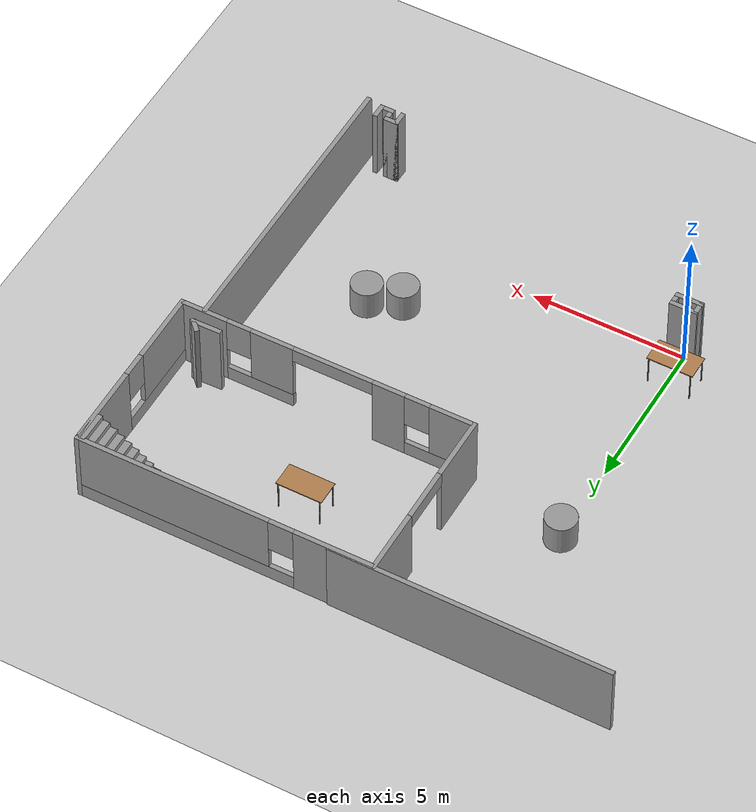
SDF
<sdf version="1.6">
 <world name="default">
  <model name="ground_plane">
   <static>1</static>
   <link name="link">
    <collision name="collision">
     <geometry><plane><normal>0 0 1</normal><size>100 100</size></plane></geometry>
     <surface>
      <contact><collide_bitmask>65535</collide_bitmask></contact>
      <friction><ode><mu>100</mu><mu2>50</mu2></ode></friction>
     </surface>
    </collision>
    <visual name="visual">
     <cast_shadows>0</cast_shadows>
     <geometry><plane><normal>0 0 1</normal><size>100 100</size></plane></geometry>
     <material>
      <script><uri>file://media/materials/scripts/gazebo.material</uri><name>Gazebo/Grey</name></script>
     </material>
    </visual>
   </link>
  </model>
  <model name="so1_1">
   <pose>11.7341 7.701 0 0 -0 0</pose>
   <link name="Wall_0">
    <collision name="Wall_0_Collision">
     <geometry><box><size>1 0.15 2.5</size></box></geometry>
     <pose>0 0 1.25 0 -0 0</pose>
    </collision>
    <visual name="Wall_0_Visual">
     <pose>0 0 1.25 0 -0 0</pose>
     <geometry><box><size>1 0.15 2.5</size></box></geometry>
     <material>
      <script><uri>file://media/materials/scripts/gazebo.material</uri><name>Gazebo/Grey</name></script>
      <ambient>1 1 1 1</ambient>
     </material>
     <meta><layer>0</layer></meta>
    </visual>
    <pose>-0.01472 -0.123744 0 0 -0 0.023525</pose>
   </link>
   <link name="Wall_1">
    <collision name="Wall_1_Collision">
     <geometry><box><size>0.5 0.15 2.5</size></box></geometry>
     <pose>0 0 1.25 0 -0 0</pose>
    </collision>
    <visual name="Wall_1_Visual">
     <pose>0 0 1.25 0 -0 0</pose>
     <geometry><box><size>0.5 0.15 2.5</size></box></geometry>
     <material>
      <script><uri>file://media/materials/scripts/gazebo.material</uri><name>Gazebo/Grey</name></script>
      <ambient>1 1 1 1</ambient>
     </material>
     <meta><layer>0</layer></meta>
    </visual>
    <pose>0.286536 -0 0 0 -0 2.35619</pose>
   </link>
   <static>1</static>
  </model>
  <model name="so2">
   <pose>11.1924 -2.29799 0 0 -0 0</pose>
   <link name="Wall_10">
    <collision name="Wall_10_Collision">
     <geometry><box><size>0.5 0.15 2.5</size></box></geometry>
     <pose>0 0 1.25 0 -0 0</pose>
    </collision>
    <visual name="Wall_10_Visual">
     <pose>0 0 1.25 0 -0 0</pose>
     <geometry><box><size>0.5 0.15 2.5</size></box></geometry>
     <material>
      <script><uri>file://media/materials/scripts/gazebo.material</uri><name>Gazebo/Grey</name></script>
      <ambient>1 1 1 1</ambient>
     </material>
     <meta><layer>0</layer></meta>
    </visual>
    <pose>-0.35 0 0 0 -0 -1.5708</pose>
   </link>
   <link name="Wall_3">
    <collision name="Wall_3_Collision">
     <geometry><box><size>0.5 0.15 2.5</size></box></geometry>
     <pose>0 0 1.25 0 -0 0</pose>
    </collision>
    <visual name="Wall_3_Visual">
     <pose>0 0 1.25 0 -0 0</pose>
     <geometry><box><size>0.5 0.15 2.5</size></box></geometry>
     <material>
      <script><uri>file://media/materials/scripts/gazebo.material</uri><name>Gazebo/Grey</name></script>
      <ambient>1 1 1 1</ambient>
     </material>
     <meta><layer>0</layer></meta>
    </visual>
    <pose>0.35 0 0 0 -0 -1.5708</pose>
   </link>
   <link name="Wall_4">
    <collision name="Wall_4_Collision">
     <geometry><box><size>0.5 0.15 2.5</size></box></geometry>
     <pose>0 0 1.25 0 -0 0</pose>
    </collision>
    <visual name="Wall_4_Visual">
     <pose>0 0 1.25 0 -0 0</pose>
     <geometry><box><size>0.5 0.15 2.5</size></box></geometry>
     <material>
      <script><uri>file://media/materials/scripts/gazebo.material</uri><name>Gazebo/Grey</name></script>
      <ambient>1 1 1 1</ambient>
     </material>
     <meta><layer>0</layer></meta>
    </visual>
    <pose>0.175 -0.175 0 0 -0 3.14159</pose>
   </link>
   <link name="Wall_8">
    <collision name="Wall_8_Collision">
     <geometry><box><size>0.5 0.15 2.5</size></box></geometry>
     <pose>0 0 1.25 0 -0 0</pose>
    </collision>
    <visual name="Wall_8_Visual">
     <pose>0 0 1.25 0 -0 0</pose>
     <geometry><box><size>0.5 0.15 2.5</size></box></geometry>
     <material>
      <script><uri>file://media/materials/scripts/gazebo.material</uri><name>Gazebo/Grey</name></script>
      <ambient>1 1 1 1</ambient>
     </material>
     <meta><layer>0</layer></meta>
    </visual>
    <pose>-0 0 0 0 -0 1.5708</pose>
   </link>
   <link name="Wall_9">
    <collision name="Wall_9_Collision">
     <geometry><box><size>0.5 0.15 2.5</size></box></geometry>
     <pose>0 0 1.25 0 -0 0</pose>
    </collision>
    <visual name="Wall_9_Visual">
     <pose>0 0 1.25 0 -0 0</pose>
     <geometry><box><size>0.5 0.15 2.5</size></box></geometry>
     <material>
      <script><uri>file://media/materials/scripts/gazebo.material</uri><name>Gazebo/Grey</name></script>
      <ambient>1 1 1 1</ambient>
     </material>
     <meta><layer>0</layer></meta>
    </visual>
    <pose>-0.175 0.175 0 0 -0 3.14159</pose>
   </link>
   <static>1</static>
  </model>
  <model name="house1_0">
   <pose>7.9813 9.9993 0 0 -0 1.575</pose>
   <link name="Stairs_0">
    <visual name="Stairs_0_Visual_0">
     <pose>2.40484 -1.42237 0.083333 0 -0 0</pose>
     <geometry><box><size>1 0.233333 0.166667</size></box></geometry>
     <material>
      <script><uri>file://media/materials/scripts/gazebo.material</uri><name>Gazebo/Grey</name></script>
      <ambient>1 1 1 1</ambient>
     </material>
     <meta><layer>0</layer></meta>
    </visual>
    <collision name="Stairs_0_Collision_0">
     <geometry><box><size>1 0.233333 0.166667</size></box></geometry>
     <pose>2.40484 -1.42237 0.083333 0 -0 0</pose>
    </collision>
    <visual name="Stairs_0_Visual_1">
     <pose>2.40484 -1.6557 0.25 0 -0 0</pose>
     <geometry><box><size>1 0.233333 0.166667</size></box></geometry>
     <material>
      <script><uri>file://media/materials/scripts/gazebo.material</uri><name>Gazebo/Grey</name></script>
      <ambient>1 1 1 1</ambient>
     </material>
     <meta><layer>0</layer></meta>
    </visual>
    <collision name="Stairs_0_Collision_1">
     <geometry><box><size>1 0.233333 0.166667</size></box></geometry>
     <pose>2.40484 -1.6557 0.25 0 -0 0</pose>
    </collision>
    <visual name="Stairs_0_Visual_2">
     <pose>2.40484 -1.88904 0.416667 0 -0 0</pose>
     <geometry><box><size>1 0.233333 0.166667</size></box></geometry>
     <material>
      <script><uri>file://media/materials/scripts/gazebo.material</uri><name>Gazebo/Grey</name></script>
      <ambient>1 1 1 1</ambient>
     </material>
     <meta><layer>0</layer></meta>
    </visual>
    <collision name="Stairs_0_Collision_2">
     <geometry><box><size>1 0.233333 0.166667</size></box></geometry>
     <pose>2.40484 -1.88904 0.416667 0 -0 0</pose>
    </collision>
    <visual name="Stairs_0_Visual_3">
     <pose>2.40484 -2.12237 0.583333 0 -0 0</pose>
     <geometry><box><size>1 0.233333 0.166667</size></box></geometry>
     <material>
      <script><uri>file://media/materials/scripts/gazebo.material</uri><name>Gazebo/Grey</name></script>
      <ambient>1 1 1 1</ambient>
     </material>
     <meta><layer>0</layer></meta>
    </visual>
    <collision name="Stairs_0_Collision_3">
     <geometry><box><size>1 0.233333 0.166667</size></box></geometry>
     <pose>2.40484 -2.12237 0.583333 0 -0 0</pose>
    </collision>
    <visual name="Stairs_0_Visual_4">
     <pose>2.40484 -2.3557 0.75 0 -0 0</pose>
     <geometry><box><size>1 0.233333 0.166667</size></box></geometry>
     <material>
      <script><uri>file://media/materials/scripts/gazebo.material</uri><name>Gazebo/Grey</name></script>
      <ambient>1 1 1 1</ambient>
     </material>
     <meta><layer>0</layer></meta>
    </visual>
    <collision name="Stairs_0_Collision_4">
     <geometry><box><size>1 0.233333 0.166667</size></box></geometry>
     <pose>2.40484 -2.3557 0.75 0 -0 0</pose>
    </collision>
    <visual name="Stairs_0_Visual_5">
     <pose>2.40484 -2.58904 0.916667 0 -0 0</pose>
     <geometry><box><size>1 0.233333 0.166667</size></box></geometry>
     <material>
      <script><uri>file://media/materials/scripts/gazebo.material</uri><name>Gazebo/Grey</name></script>
      <ambient>1 1 1 1</ambient>
     </material>
     <meta><layer>0</layer></meta>
    </visual>
    <collision name="Stairs_0_Collision_5">
     <geometry><box><size>1 0.233333 0.166667</size></box></geometry>
     <pose>2.40484 -2.58904 0.916667 0 -0 0</pose>
    </collision>
    <visual name="Stairs_0_Visual_6">
     <pose>2.40484 -2.82237 1.08333 0 -0 0</pose>
     <geometry><box><size>1 0.233333 0.166667</size></box></geometry>
     <material>
      <script><uri>file://media/materials/scripts/gazebo.material</uri><name>Gazebo/Grey</name></script>
      <ambient>1 1 1 1</ambient>
     </material>
     <meta><layer>0</layer></meta>
    </visual>
    <collision name="Stairs_0_Collision_6">
     <geometry><box><size>1 0.233333 0.166667</size></box></geometry>
     <pose>2.40484 -2.82237 1.08333 0 -0 0</pose>
    </collision>
    <visual name="Stairs_0_Visual_7">
     <pose>2.40484 -3.0557 1.25 0 -0 0</pose>
     <geometry><box><size>1 0.233333 0.166667</size></box></geometry>
     <material>
      <script><uri>file://media/materials/scripts/gazebo.material</uri><name>Gazebo/Grey</name></script>
      <ambient>1 1 1 1</ambient>
     </material>
     <meta><layer>0</layer></meta>
    </visual>
    <collision name="Stairs_0_Collision_7">
     <geometry><box><size>1 0.233333 0.166667</size></box></geometry>
     <pose>2.40484 -3.0557 1.25 0 -0 0</pose>
    </collision>
    <visual name="Stairs_0_Visual_8">
     <pose>2.40484 -3.28904 1.41667 0 -0 0</pose>
     <geometry><box><size>1 0.233333 0.166667</size></box></geometry>
     <material>
      <script><uri>file://media/materials/scripts/gazebo.material</uri><name>Gazebo/Grey</name></script>
      <ambient>1 1 1 1</ambient>
     </material>
     <meta><layer>0</layer></meta>
    </visual>
    <collision name="Stairs_0_Collision_8">
     <geometry><box><size>1 0.233333 0.166667</size></box></geometry>
     <pose>2.40484 -3.28904 1.41667 0 -0 0</pose>
    </collision>
    <visual name="Stairs_0_Visual_9">
     <pose>2.40484 -3.52237 1.58333 0 -0 0</pose>
     <geometry><box><size>1 0.233333 0.166667</size></box></geometry>
     <material>
      <script><uri>file://media/materials/scripts/gazebo.material</uri><name>Gazebo/Grey</name></script>
      <ambient>1 1 1 1</ambient>
     </material>
     <meta><layer>0</layer></meta>
    </visual>
    <collision name="Stairs_0_Collision_9">
     <geometry><box><size>1 0.233333 0.166667</size></box></geometry>
     <pose>2.40484 -3.52237 1.58333 0 -0 0</pose>
    </collision>
    <visual name="Stairs_0_Visual_10">
     <pose>2.40484 -3.7557 1.75 0 -0 0</pose>
     <geometry><box><size>1 0.233333 0.166667</size></box></geometry>
     <material>
      <script><uri>file://media/materials/scripts/gazebo.material</uri><name>Gazebo/Grey</name></script>
      <ambient>1 1 1 1</ambient>
     </material>
     <meta><layer>0</layer></meta>
    </visual>
    <collision name="Stairs_0_Collision_10">
     <geometry><box><size>1 0.233333 0.166667</size></box></geometry>
     <pose>2.40484 -3.7557 1.75 0 -0 0</pose>
    </collision>
    <visual name="Stairs_0_Visual_11">
     <pose>2.40484 -3.98904 1.91667 0 -0 0</pose>
     <geometry><box><size>1 0.233333 0.166667</size></box></geometry>
     <material>
      <script><uri>file://media/materials/scripts/gazebo.material</uri><name>Gazebo/Grey</name></script>
      <ambient>1 1 1 1</ambient>
     </material>
     <meta><layer>0</layer></meta>
    </visual>
    <collision name="Stairs_0_Collision_11">
     <geometry><box><size>1 0.233333 0.166667</size></box></geometry>
     <pose>2.40484 -3.98904 1.91667 0 -0 0</pose>
    </collision>
    <visual name="Stairs_0_Visual_12">
     <pose>2.40484 -4.22237 2.08333 0 -0 0</pose>
     <geometry><box><size>1 0.233333 0.166667</size></box></geometry>
     <material>
      <script><uri>file://media/materials/scripts/gazebo.material</uri><name>Gazebo/Grey</name></script>
      <ambient>1 1 1 1</ambient>
     </material>
     <meta><layer>0</layer></meta>
    </visual>
    <collision name="Stairs_0_Collision_12">
     <geometry><box><size>1 0.233333 0.166667</size></box></geometry>
     <pose>2.40484 -4.22237 2.08333 0 -0 0</pose>
    </collision>
    <visual name="Stairs_0_Visual_13">
     <pose>2.40484 -4.4557 2.25 0 -0 0</pose>
     <geometry><box><size>1 0.233333 0.166667</size></box></geometry>
     <material>
      <script><uri>file://media/materials/scripts/gazebo.material</uri><name>Gazebo/Grey</name></script>
      <ambient>1 1 1 1</ambient>
     </material>
     <meta><layer>0</layer></meta>
    </visual>
    <collision name="Stairs_0_Collision_13">
     <geometry><box><size>1 0.233333 0.166667</size></box></geometry>
     <pose>2.40484 -4.4557 2.25 0 -0 0</pose>
    </collision>
    <visual name="Stairs_0_Visual_14">
     <pose>2.40484 -4.68904 2.41667 0 -0 0</pose>
     <geometry><box><size>1 0.233333 0.166667</size></box></geometry>
     <material>
      <script><uri>file://media/materials/scripts/gazebo.material</uri><name>Gazebo/Grey</name></script>
      <ambient>1 1 1 1</ambient>
     </material>
     <meta><layer>0</layer></meta>
    </visual>
    <collision name="Stairs_0_Collision_14">
     <geometry><box><size>1 0.233333 0.166667</size></box></geometry>
     <pose>2.40484 -4.68904 2.41667 0 -0 0</pose>
    </collision>
   </link>
   <link name="Wall_0">
    <pose>-2.925 -0 0 0 -0 1.5708</pose>
    <visual name="Wall_0_Visual_0">
     <pose>-4.08439 0 1.25 0 -0 0</pose>
     <geometry><box><size>1.58121 0.15 2.5</size></box></geometry>
     <material>
      <script><uri>file://media/materials/scripts/gazebo.material</uri><name>Gazebo/Grey</name></script>
      <ambient>1 1 1 1</ambient>
     </material>
     <meta><layer>0</layer></meta>
    </visual>
    <collision name="Wall_0_Collision_0">
     <geometry><box><size>1.58121 0.15 2.5</size></box></geometry>
     <pose>-4.08439 0 1.25 0 -0 0</pose>
    </collision>
    <visual name="Wall_0_Visual_1">
     <pose>2.04929 0 1.25 0 -0 0</pose>
     <geometry><box><size>1.0642 0.15 2.5</size></box></geometry>
     <material>
      <script><uri>file://media/materials/scripts/gazebo.material</uri><name>Gazebo/Grey</name></script>
      <ambient>1 1 1 1</ambient>
     </material>
     <meta><layer>0</layer></meta>
    </visual>
    <collision name="Wall_0_Collision_1">
     <geometry><box><size>1.0642 0.15 2.5</size></box></geometry>
     <pose>2.04929 0 1.25 0 -0 0</pose>
    </collision>
    <visual name="Wall_0_Visual_2">
     <pose>-2.19413 0 0.25 0 -0 0</pose>
     <geometry><box><size>2.19931 0.15 0.5</size></box></geometry>
     <material>
      <script><uri>file://media/materials/scripts/gazebo.material</uri><name>Gazebo/Grey</name></script>
      <ambient>1 1 1 1</ambient>
     </material>
     <meta><layer>0</layer></meta>
    </visual>
    <collision name="Wall_0_Collision_2">
     <geometry><box><size>2.19931 0.15 0.5</size></box></geometry>
     <pose>-2.19413 0 0.25 0 -0 0</pose>
    </collision>
    <visual name="Wall_0_Visual_3">
     <pose>3.72819 0 0.25 0 -0 0</pose>
     <geometry><box><size>2.29361 0.15 0.5</size></box></geometry>
     <material>
      <script><uri>file://media/materials/scripts/gazebo.material</uri><name>Gazebo/Grey</name></script>
      <ambient>1 1 1 1</ambient>
     </material>
     <meta><layer>0</layer></meta>
    </visual>
    <collision name="Wall_0_Collision_3">
     <geometry><box><size>2.29361 0.15 0.5</size></box></geometry>
     <pose>3.72819 0 0.25 0 -0 0</pose>
    </collision>
    <visual name="Wall_0_Visual_4">
     <pose>-1.79413 0 1.5 0 -0 0</pose>
     <geometry><box><size>1.39931 0.15 2</size></box></geometry>
     <material>
      <script><uri>file://media/materials/scripts/gazebo.material</uri><name>Gazebo/Grey</name></script>
      <ambient>1 1 1 1</ambient>
     </material>
     <meta><layer>0</layer></meta>
    </visual>
    <collision name="Wall_0_Collision_4">
     <geometry><box><size>1.39931 0.15 2</size></box></geometry>
     <pose>-1.79413 0 1.5 0 -0 0</pose>
    </collision>
    <visual name="Wall_0_Visual_5">
     <pose>-1.79413 0 1.5 0 -0 0</pose>
     <geometry><box><size>1.39931 0.15 2</size></box></geometry>
     <material>
      <script><uri>file://media/materials/scripts/gazebo.material</uri><name>Gazebo/Grey</name></script>
      <ambient>1 1 1 1</ambient>
     </material>
     <meta><layer>0</layer></meta>
    </visual>
    <collision name="Wall_0_Collision_5">
     <geometry><box><size>1.39931 0.15 2</size></box></geometry>
     <pose>-1.79413 0 1.5 0 -0 0</pose>
    </collision>
    <visual name="Wall_0_Visual_6">
     <pose>4.12819 0 1.5 0 -0 0</pose>
     <geometry><box><size>1.49361 0.15 2</size></box></geometry>
     <material>
      <script><uri>file://media/materials/scripts/gazebo.material</uri><name>Gazebo/Grey</name></script>
      <ambient>1 1 1 1</ambient>
     </material>
     <meta><layer>0</layer></meta>
    </visual>
    <collision name="Wall_0_Collision_6">
     <geometry><box><size>1.49361 0.15 2</size></box></geometry>
     <pose>4.12819 0 1.5 0 -0 0</pose>
    </collision>
    <visual name="Wall_0_Visual_7">
     <pose>-2.89379 0 1.9 0 -0 0</pose>
     <geometry><box><size>0.8 0.15 1.2</size></box></geometry>
     <material>
      <script><uri>file://media/materials/scripts/gazebo.material</uri><name>Gazebo/Grey</name></script>
      <ambient>1 1 1 1</ambient>
     </material>
     <meta><layer>0</layer></meta>
    </visual>
    <collision name="Wall_0_Collision_7">
     <geometry><box><size>0.8 0.15 1.2</size></box></geometry>
     <pose>-2.89379 0 1.9 0 -0 0</pose>
    </collision>
    <visual name="Wall_0_Visual_8">
     <pose>2.98139 0 1.9 0 -0 0</pose>
     <geometry><box><size>0.8 0.15 1.2</size></box></geometry>
     <material>
      <script><uri>file://media/materials/scripts/gazebo.material</uri><name>Gazebo/Grey</name></script>
      <ambient>1 1 1 1</ambient>
     </material>
     <meta><layer>0</layer></meta>
    </visual>
    <collision name="Wall_0_Collision_8">
     <geometry><box><size>0.8 0.15 1.2</size></box></geometry>
     <pose>2.98139 0 1.9 0 -0 0</pose>
    </collision>
    <visual name="Wall_0_Visual_9">
     <pose>0.211357 0 2.25 0 -0 0</pose>
     <geometry><box><size>2.61166 0.15 0.5</size></box></geometry>
     <material>
      <script><uri>file://media/materials/scripts/gazebo.material</uri><name>Gazebo/Grey</name></script>
      <ambient>1 1 1 1</ambient>
     </material>
     <meta><layer>0</layer></meta>
    </visual>
    <collision name="Wall_0_Collision_9">
     <geometry><box><size>2.61166 0.15 0.5</size></box></geometry>
     <pose>0.211357 0 2.25 0 -0 0</pose>
    </collision>
    <visual name="Wall_0_Visual_10">
     <pose>0.211357 0 2.25 0 -0 0</pose>
     <geometry><box><size>2.61166 0.15 0.5</size></box></geometry>
     <material>
      <script><uri>file://media/materials/scripts/gazebo.material</uri><name>Gazebo/Grey</name></script>
      <ambient>1 1 1 1</ambient>
     </material>
     <meta><layer>0</layer></meta>
    </visual>
    <collision name="Wall_0_Collision_10">
     <geometry><box><size>2.61166 0.15 0.5</size></box></geometry>
     <pose>0.211357 0 2.25 0 -0 0</pose>
    </collision>
   </link>
   <link name="Wall_1">
    <pose>0 4.8 0 0 -0 0</pose>
    <visual name="Wall_1_Visual_0">
     <pose>-1.93355 0 1.25 0 -0 0</pose>
     <geometry><box><size>2.13291 0.15 2.5</size></box></geometry>
     <material>
      <script><uri>file://media/materials/scripts/gazebo.material</uri><name>Gazebo/Grey</name></script>
      <ambient>1 1 1 1</ambient>
     </material>
     <meta><layer>0</layer></meta>
    </visual>
    <collision name="Wall_1_Collision_0">
     <geometry><box><size>2.13291 0.15 2.5</size></box></geometry>
     <pose>-1.93355 0 1.25 0 -0 0</pose>
    </collision>
    <visual name="Wall_1_Visual_1">
     <pose>1.9328 0 1.25 0 -0 0</pose>
     <geometry><box><size>2.13439 0.15 2.5</size></box></geometry>
     <material>
      <script><uri>file://media/materials/scripts/gazebo.material</uri><name>Gazebo/Grey</name></script>
      <ambient>1 1 1 1</ambient>
     </material>
     <meta><layer>0</layer></meta>
    </visual>
    <collision name="Wall_1_Collision_1">
     <geometry><box><size>2.13439 0.15 2.5</size></box></geometry>
     <pose>1.9328 0 1.25 0 -0 0</pose>
    </collision>
    <visual name="Wall_1_Visual_2">
     <pose>-0.000743 0 2.25 0 -0 0</pose>
     <geometry><box><size>1.7327 0.15 0.5</size></box></geometry>
     <material>
      <script><uri>file://media/materials/scripts/gazebo.material</uri><name>Gazebo/Grey</name></script>
      <ambient>1 1 1 1</ambient>
     </material>
     <meta><layer>0</layer></meta>
    </visual>
    <collision name="Wall_1_Collision_2">
     <geometry><box><size>1.7327 0.15 0.5</size></box></geometry>
     <pose>-0.000743 0 2.25 0 -0 0</pose>
    </collision>
   </link>
   <link name="Wall_2">
    <pose>2.925 -0 0 0 -0 -1.5708</pose>
    <visual name="Wall_2_Visual_0">
     <pose>-3.56149 0 1.25 0 -0 0</pose>
     <geometry><box><size>2.62701 0.15 2.5</size></box></geometry>
     <material>
      <script><uri>file://media/materials/scripts/gazebo.material</uri><name>Gazebo/Grey</name></script>
      <ambient>1 1 1 1</ambient>
     </material>
     <meta><layer>0</layer></meta>
    </visual>
    <collision name="Wall_2_Collision_0">
     <geometry><box><size>2.62701 0.15 2.5</size></box></geometry>
     <pose>-3.56149 0 1.25 0 -0 0</pose>
    </collision>
    <visual name="Wall_2_Visual_1">
     <pose>1.31351 0 0.25 0 -0 0</pose>
     <geometry><box><size>7.12299 0.15 0.5</size></box></geometry>
     <material>
      <script><uri>file://media/materials/scripts/gazebo.material</uri><name>Gazebo/Grey</name></script>
      <ambient>1 1 1 1</ambient>
     </material>
     <meta><layer>0</layer></meta>
    </visual>
    <collision name="Wall_2_Collision_1">
     <geometry><box><size>7.12299 0.15 0.5</size></box></geometry>
     <pose>1.31351 0 0.25 0 -0 0</pose>
    </collision>
    <visual name="Wall_2_Visual_2">
     <pose>1.71351 0 1.5 0 -0 0</pose>
     <geometry><box><size>6.32299 0.15 2</size></box></geometry>
     <material>
      <script><uri>file://media/materials/scripts/gazebo.material</uri><name>Gazebo/Grey</name></script>
      <ambient>1 1 1 1</ambient>
     </material>
     <meta><layer>0</layer></meta>
    </visual>
    <collision name="Wall_2_Collision_2">
     <geometry><box><size>6.32299 0.15 2</size></box></geometry>
     <pose>1.71351 0 1.5 0 -0 0</pose>
    </collision>
    <visual name="Wall_2_Visual_3">
     <pose>-1.84799 0 1.9 0 -0 0</pose>
     <geometry><box><size>0.8 0.15 1.2</size></box></geometry>
     <material>
      <script><uri>file://media/materials/scripts/gazebo.material</uri><name>Gazebo/Grey</name></script>
      <ambient>1 1 1 1</ambient>
     </material>
     <meta><layer>0</layer></meta>
    </visual>
    <collision name="Wall_2_Collision_3">
     <geometry><box><size>0.8 0.15 1.2</size></box></geometry>
     <pose>-1.84799 0 1.9 0 -0 0</pose>
    </collision>
   </link>
   <link name="Wall_3">
    <pose>0 -4.8 0 0 -0 3.14159</pose>
    <visual name="Wall_3_Visual_0">
     <pose>-1.61122 0 1.25 0 -0 0</pose>
     <geometry><box><size>2.77757 0.15 2.5</size></box></geometry>
     <material>
      <script><uri>file://media/materials/scripts/gazebo.material</uri><name>Gazebo/Grey</name></script>
      <ambient>1 1 1 1</ambient>
     </material>
     <meta><layer>0</layer></meta>
    </visual>
    <collision name="Wall_3_Collision_0">
     <geometry><box><size>2.77757 0.15 2.5</size></box></geometry>
     <pose>-1.61122 0 1.25 0 -0 0</pose>
    </collision>
    <visual name="Wall_3_Visual_1">
     <pose>1.38878 0 0.25 0 -0 0</pose>
     <geometry><box><size>3.22243 0.15 0.5</size></box></geometry>
     <material>
      <script><uri>file://media/materials/scripts/gazebo.material</uri><name>Gazebo/Grey</name></script>
      <ambient>1 1 1 1</ambient>
     </material>
     <meta><layer>0</layer></meta>
    </visual>
    <collision name="Wall_3_Collision_1">
     <geometry><box><size>3.22243 0.15 0.5</size></box></geometry>
     <pose>1.38878 0 0.25 0 -0 0</pose>
    </collision>
    <visual name="Wall_3_Visual_2">
     <pose>1.78878 0 1.5 0 -0 0</pose>
     <geometry><box><size>2.42243 0.15 2</size></box></geometry>
     <material>
      <script><uri>file://media/materials/scripts/gazebo.material</uri><name>Gazebo/Grey</name></script>
      <ambient>1 1 1 1</ambient>
     </material>
     <meta><layer>0</layer></meta>
    </visual>
    <collision name="Wall_3_Collision_2">
     <geometry><box><size>2.42243 0.15 2</size></box></geometry>
     <pose>1.78878 0 1.5 0 -0 0</pose>
    </collision>
    <visual name="Wall_3_Visual_3">
     <pose>0.177567 0 1.9 0 -0 0</pose>
     <geometry><box><size>0.8 0.15 1.2</size></box></geometry>
     <material>
      <script><uri>file://media/materials/scripts/gazebo.material</uri><name>Gazebo/Grey</name></script>
      <ambient>1 1 1 1</ambient>
     </material>
     <meta><layer>0</layer></meta>
    </visual>
    <collision name="Wall_3_Collision_3">
     <geometry><box><size>0.8 0.15 1.2</size></box></geometry>
     <pose>0.177567 0 1.9 0 -0 0</pose>
    </collision>
   </link>
   <static>1</static>
  </model>
  <model name="t1_0">
   <pose>0.127163 12.949 0 0 -0 0</pose>
   <link name="Wall_7">
    <collision name="Wall_7_Collision">
     <geometry><box><size>9 0.15 2.5</size></box></geometry>
     <pose>0 0 1.25 0 -0 0</pose>
    </collision>
    <visual name="Wall_7_Visual">
     <pose>0 0 1.25 0 -0 0</pose>
     <geometry><box><size>9 0.15 2.5</size></box></geometry>
     <material>
      <script><uri>file://media/materials/scripts/gazebo.material</uri><name>Gazebo/Grey</name></script>
      <ambient>1 1 1 1</ambient>
     </material>
     <meta><layer>0</layer></meta>
    </visual>
   </link>
   <static>1</static>
  </model>
  <model name="t4">
   <pose>12.0496 2.24716 0 0 -0 0</pose>
   <link name="Wall_12">
    <collision name="Wall_12_Collision">
     <geometry><box><size>9.75 0.15 2.5</size></box></geometry>
     <pose>0 0 1.25 0 -0 0</pose>
    </collision>
    <visual name="Wall_12_Visual">
     <pose>0 0 1.25 0 -0 0</pose>
     <geometry><box><size>9.75 0.15 2.5</size></box></geometry>
     <material>
      <script><uri>file://media/materials/scripts/gazebo.material</uri><name>Gazebo/Grey</name></script>
      <ambient>1 1 1 1</ambient>
     </material>
     <meta><layer>0</layer></meta>
    </visual>
    <pose>0 0 0 0 -0 -1.5708</pose>
   </link>
   <static>1</static>
  </model>
  <model name="table">
   <static>1</static>
   <link name="link">
    <collision name="surface">
     <pose>0 0 1 0 -0 0</pose>
     <geometry><box><size>1.5 0.8 0.03</size></box></geometry>
     <surface><friction><ode><mu>0.6</mu><mu2>0.6</mu2></ode></friction></surface>
    </collision>
    <visual name="visual1">
     <pose>0 0 1 0 -0 0</pose>
     <geometry><box><size>1.5 0.8 0.03</size></box></geometry>
     <material>
      <script><uri>file://media/materials/scripts/gazebo.material</uri><name>Gazebo/Wood</name></script>
     </material>
    </visual>
    <collision name="front_left_leg">
     <pose>0.68 0.38 0.5 0 -0 0</pose>
     <geometry><cylinder><radius>0.02</radius><length>1</length></cylinder></geometry>
    </collision>
    <visual name="front_left_leg">
     <pose>0.68 0.38 0.5 0 -0 0</pose>
     <geometry><cylinder><radius>0.02</radius><length>1</length></cylinder></geometry>
     <material>
      <script><uri>file://media/materials/scripts/gazebo.material</uri><name>Gazebo/Grey</name></script>
     </material>
    </visual>
    <collision name="front_right_leg">
     <pose>0.68 -0.38 0.5 0 -0 0</pose>
     <geometry><cylinder><radius>0.02</radius><length>1</length></cylinder></geometry>
    </collision>
    <visual name="front_right_leg">
     <pose>0.68 -0.38 0.5 0 -0 0</pose>
     <geometry><cylinder><radius>0.02</radius><length>1</length></cylinder></geometry>
     <material>
      <script><uri>file://media/materials/scripts/gazebo.material</uri><name>Gazebo/Grey</name></script>
     </material>
    </visual>
    <collision name="back_right_leg">
     <pose>-0.68 -0.38 0.5 0 -0 0</pose>
     <geometry><cylinder><radius>0.02</radius><length>1</length></cylinder></geometry>
    </collision>
    <visual name="back_right_leg">
     <pose>-0.68 -0.38 0.5 0 -0 0</pose>
     <geometry><cylinder><radius>0.02</radius><length>1</length></cylinder></geometry>
     <material>
      <script><uri>file://media/materials/scripts/gazebo.material</uri><name>Gazebo/Grey</name></script>
     </material>
    </visual>
    <collision name="back_left_leg">
     <pose>-0.68 0.38 0.5 0 -0 0</pose>
     <geometry><cylinder><radius>0.02</radius><length>1</length></cylinder></geometry>
    </collision>
    <visual name="back_left_leg">
     <pose>-0.68 0.38 0.5 0 -0 0</pose>
     <geometry><cylinder><radius>0.02</radius><length>1</length></cylinder></geometry>
     <material>
      <script><uri>file://media/materials/scripts/gazebo.material</uri><name>Gazebo/Grey</name></script>
     </material>
    </visual>
   </link>
   <pose>-0.139247 0.895147 0 0 -0 0</pose>
  </model>
  <model name="table_1">
   <static>1</static>
   <link name="link">
    <collision name="surface">
     <pose>0 0 1 0 -0 0</pose>
     <geometry><box><size>1.5 0.8 0.03</size></box></geometry>
     <surface><friction><ode><mu>0.6</mu><mu2>0.6</mu2></ode></friction></surface>
    </collision>
    <visual name="visual1">
     <pose>0 0 1 0 -0 0</pose>
     <geometry><box><size>1.5 0.8 0.03</size></box></geometry>
     <material>
      <script><uri>file://media/materials/scripts/gazebo.material</uri><name>Gazebo/Wood</name></script>
     </material>
    </visual>
    <collision name="front_left_leg">
     <pose>0.68 0.38 0.5 0 -0 0</pose>
     <geometry><cylinder><radius>0.02</radius><length>1</length></cylinder></geometry>
    </collision>
    <visual name="front_left_leg">
     <pose>0.68 0.38 0.5 0 -0 0</pose>
     <geometry><cylinder><radius>0.02</radius><length>1</length></cylinder></geometry>
     <material>
      <script><uri>file://media/materials/scripts/gazebo.material</uri><name>Gazebo/Grey</name></script>
     </material>
    </visual>
    <collision name="front_right_leg">
     <pose>0.68 -0.38 0.5 0 -0 0</pose>
     <geometry><cylinder><radius>0.02</radius><length>1</length></cylinder></geometry>
    </collision>
    <visual name="front_right_leg">
     <pose>0.68 -0.38 0.5 0 -0 0</pose>
     <geometry><cylinder><radius>0.02</radius><length>1</length></cylinder></geometry>
     <material>
      <script><uri>file://media/materials/scripts/gazebo.material</uri><name>Gazebo/Grey</name></script>
     </material>
    </visual>
    <collision name="back_right_leg">
     <pose>-0.68 -0.38 0.5 0 -0 0</pose>
     <geometry><cylinder><radius>0.02</radius><length>1</length></cylinder></geometry>
    </collision>
    <visual name="back_right_leg">
     <pose>-0.68 -0.38 0.5 0 -0 0</pose>
     <geometry><cylinder><radius>0.02</radius><length>1</length></cylinder></geometry>
     <material>
      <script><uri>file://media/materials/scripts/gazebo.material</uri><name>Gazebo/Grey</name></script>
     </material>
    </visual>
    <collision name="back_left_leg">
     <pose>-0.68 0.38 0.5 0 -0 0</pose>
     <geometry><cylinder><radius>0.02</radius><length>1</length></cylinder></geometry>
    </collision>
    <visual name="back_left_leg">
     <pose>-0.68 0.38 0.5 0 -0 0</pose>
     <geometry><cylinder><radius>0.02</radius><length>1</length></cylinder></geometry>
     <material>
      <script><uri>file://media/materials/scripts/gazebo.material</uri><name>Gazebo/Grey</name></script>
     </material>
    </visual>
   </link>
   <pose>6.91734 10.2177 0 0 -0 0</pose>
  </model>
  <model name="unit_cylinder">
   <pose>-0.008979 7.73793 0.499991 -0 -0 -6e-05</pose>
   <link name="link">
    <inertial>
     <mass>1</mass>
     <inertia><ixx>0.145833</ixx><ixy>0</ixy><ixz>0</ixz><iyy>0.145833</iyy><iyz>0</iyz><izz>0.125</izz></inertia>
    </inertial>
    <collision name="collision">
     <geometry><cylinder><radius>0.5</radius><length>1</length></cylinder></geometry>
    </collision>
    <visual name="visual">
     <geometry><cylinder><radius>0.5</radius><length>1</length></cylinder></geometry>
     <material>
      <script><name>Gazebo/Grey</name><uri>file://media/materials/scripts/gazebo.material</uri></script>
     </material>
    </visual>
   </link>
  </model>
  <model name="unit_cylinder_0">
   <pose>9.13525 2.72386 0.499991 -0 -0 -0</pose>
   <link name="link">
    <inertial>
     <mass>1</mass>
     <inertia><ixx>0.145833</ixx><ixy>0</ixy><ixz>0</ixz><iyy>0.145833</iyy><iyz>0</iyz><izz>0.125</izz></inertia>
    </inertial>
    <collision name="collision">
     <geometry><cylinder><radius>0.5</radius><length>1</length></cylinder></geometry>
    </collision>
    <visual name="visual">
     <geometry><cylinder><radius>0.5</radius><length>1</length></cylinder></geometry>
     <material>
      <script><name>Gazebo/Grey</name><uri>file://media/materials/scripts/gazebo.material</uri></script>
     </material>
    </visual>
   </link>
  </model>
  <model name="unit_cylinder_1">
   <pose>8.15496 2.27494 0.499993 -1e-06 -0 0</pose>
   <link name="link">
    <inertial>
     <mass>1</mass>
     <inertia><ixx>0.145833</ixx><ixy>0</ixy><ixz>0</ixz><iyy>0.145833</iyy><iyz>0</iyz><izz>0.125</izz></inertia>
    </inertial>
    <collision name="collision">
     <geometry><cylinder><radius>0.5</radius><length>1</length></cylinder></geometry>
    </collision>
    <visual name="visual">
     <geometry><cylinder><radius>0.5</radius><length>1</length></cylinder></geometry>
     <material>
      <script><name>Gazebo/Grey</name><uri>file://media/materials/scripts/gazebo.material</uri></script>
     </material>
    </visual>
   </link>
  </model>
  <model name="so0">
   <pose>0.013031 0.037637 0 0 -0 0</pose>
   <link name="Wall_32">
    <collision name="Wall_32_Collision">
     <geometry><box><size>0.15 0.15 2.5</size></box></geometry>
     <pose>0 0 1.25 0 -0 0</pose>
    </collision>
    <visual name="Wall_32_Visual">
     <pose>0 0 1.25 0 -0 0</pose>
     <geometry><box><size>0.15 0.15 2.5</size></box></geometry>
     <material>
      <script><uri>file://media/materials/scripts/gazebo.material</uri><name>Gazebo/Grey</name></script>
      <ambient>1 1 1 1</ambient>
     </material>
     <meta><layer>0</layer></meta>
    </visual>
    <pose>-0.00843 -0.170607 0 0 -0 0</pose>
   </link>
   <link name="Wall_33">
    <collision name="Wall_33_Collision">
     <geometry><box><size>0.15 0.15 2.5</size></box></geometry>
     <pose>0 0 1.25 0 -0 0</pose>
    </collision>
    <visual name="Wall_33_Visual">
     <pose>0 0 1.25 0 -0 0</pose>
     <geometry><box><size>0.15 0.15 2.5</size></box></geometry>
     <material>
      <script><uri>file://media/materials/scripts/gazebo.material</uri><name>Gazebo/Grey</name></script>
      <ambient>1 1 1 1</ambient>
     </material>
     <meta><layer>0</layer></meta>
    </visual>
    <pose>-0.00843 -0.170607 0 0 -0 0</pose>
   </link>
   <link name="Wall_38">
    <collision name="Wall_38_Collision">
     <geometry><box><size>0.901958 0.15 2.5</size></box></geometry>
     <pose>0 0 1.25 0 -0 0</pose>
    </collision>
    <visual name="Wall_38_Visual">
     <pose>0 0 1.25 0 -0 0</pose>
     <geometry><box><size>0.901958 0.15 2.5</size></box></geometry>
     <material>
      <script><uri>file://media/materials/scripts/gazebo.material</uri><name>Gazebo/Grey</name></script>
      <ambient>1 1 1 1</ambient>
     </material>
     <meta><layer>0</layer></meta>
    </visual>
    <pose>0 -0.169931 0 0 -0 0.008695</pose>
   </link>
   <link name="Wall_39">
    <collision name="Wall_39_Collision">
     <geometry><box><size>0.492481 0.15 2.5</size></box></geometry>
     <pose>0 0 1.25 0 -0 0</pose>
    </collision>
    <visual name="Wall_39_Visual">
     <pose>0 0 1.25 0 -0 0</pose>
     <geometry><box><size>0.492481 0.15 2.5</size></box></geometry>
     <material>
      <script><uri>file://media/materials/scripts/gazebo.material</uri><name>Gazebo/Grey</name></script>
      <ambient>1 1 1 1</ambient>
     </material>
     <meta><layer>0</layer></meta>
    </visual>
    <pose>0.375965 0.00131 0 0 -0 1.5708</pose>
   </link>
   <link name="Wall_40">
    <collision name="Wall_40_Collision">
     <geometry><box><size>0.901958 0.15 2.5</size></box></geometry>
     <pose>0 0 1.25 0 -0 0</pose>
    </collision>
    <visual name="Wall_40_Visual">
     <pose>0 0 1.25 0 -0 0</pose>
     <geometry><box><size>0.901958 0.15 2.5</size></box></geometry>
     <material>
      <script><uri>file://media/materials/scripts/gazebo.material</uri><name>Gazebo/Grey</name></script>
      <ambient>1 1 1 1</ambient>
     </material>
     <meta><layer>0</layer></meta>
    </visual>
    <pose>0 0.172551 0 0 -0 -3.1329</pose>
   </link>
   <link name="Wall_41">
    <collision name="Wall_41_Collision">
     <geometry><box><size>0.492481 0.15 2.5</size></box></geometry>
     <pose>0 0 1.25 0 -0 0</pose>
    </collision>
    <visual name="Wall_41_Visual">
     <pose>0 0 1.25 0 -0 0</pose>
     <geometry><box><size>0.492481 0.15 2.5</size></box></geometry>
     <material>
      <script><uri>file://media/materials/scripts/gazebo.material</uri><name>Gazebo/Grey</name></script>
      <ambient>1 1 1 1</ambient>
     </material>
     <meta><layer>0</layer></meta>
    </visual>
    <pose>-0.375965 -0.005228 0 0 -0 -1.5708</pose>
   </link>
   <static>1</static>
  </model>
 </world>
</sdf>
